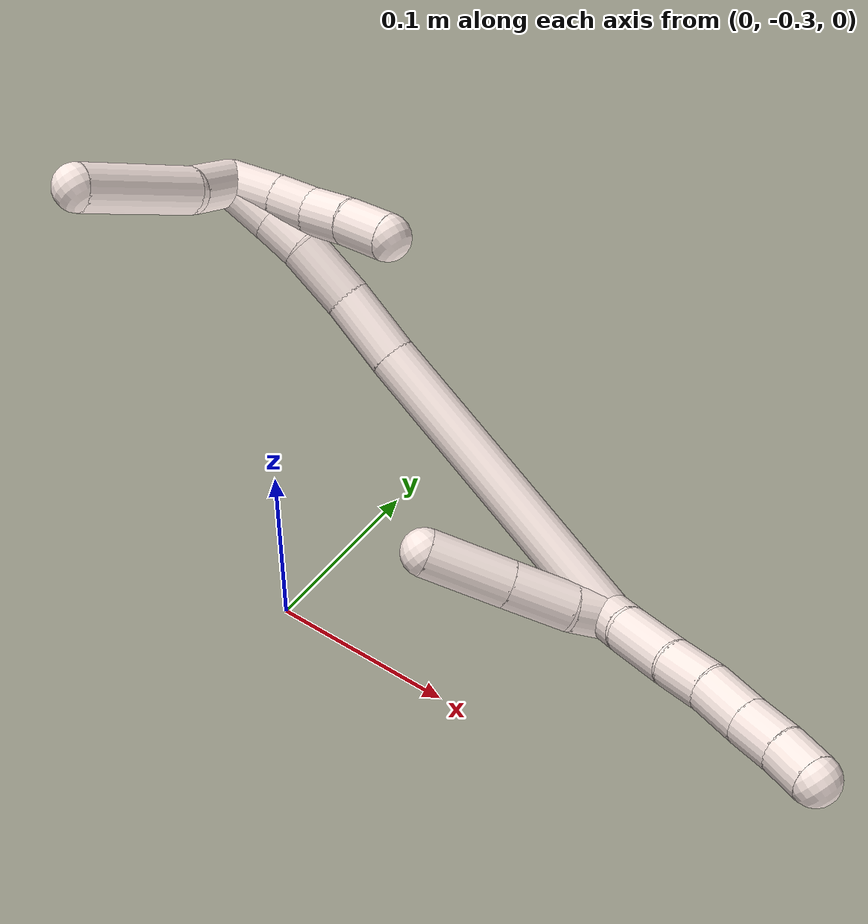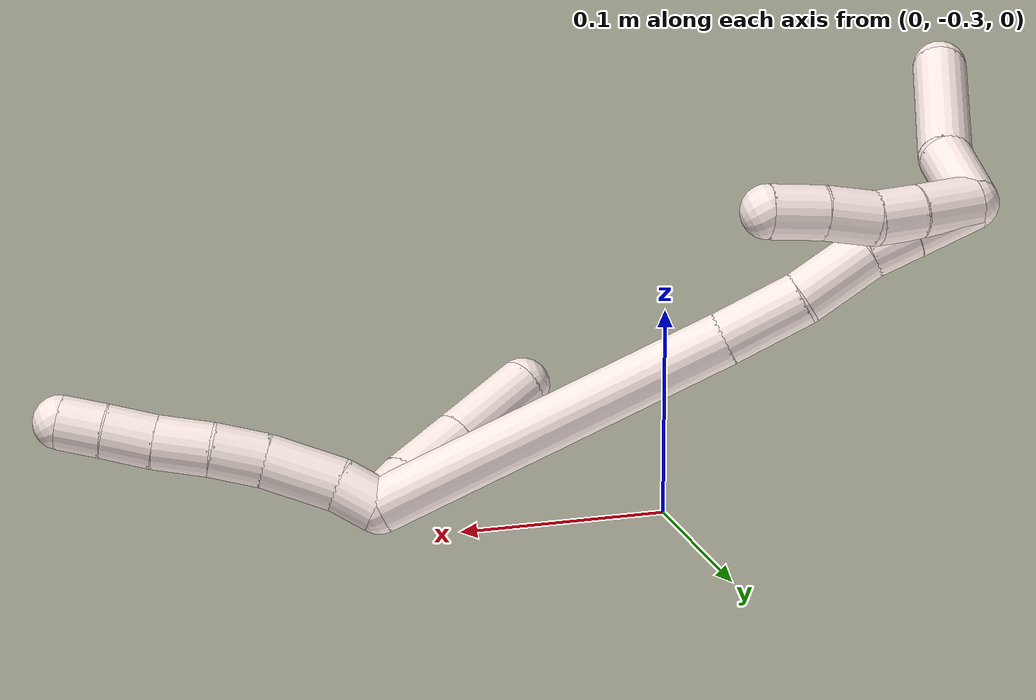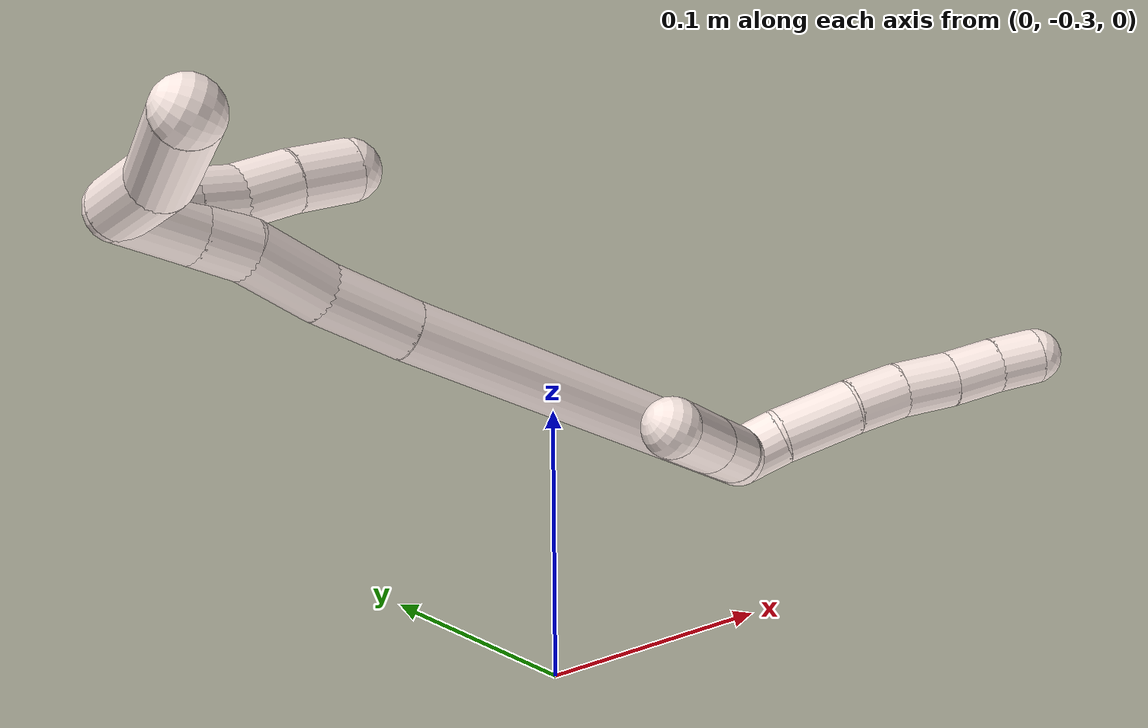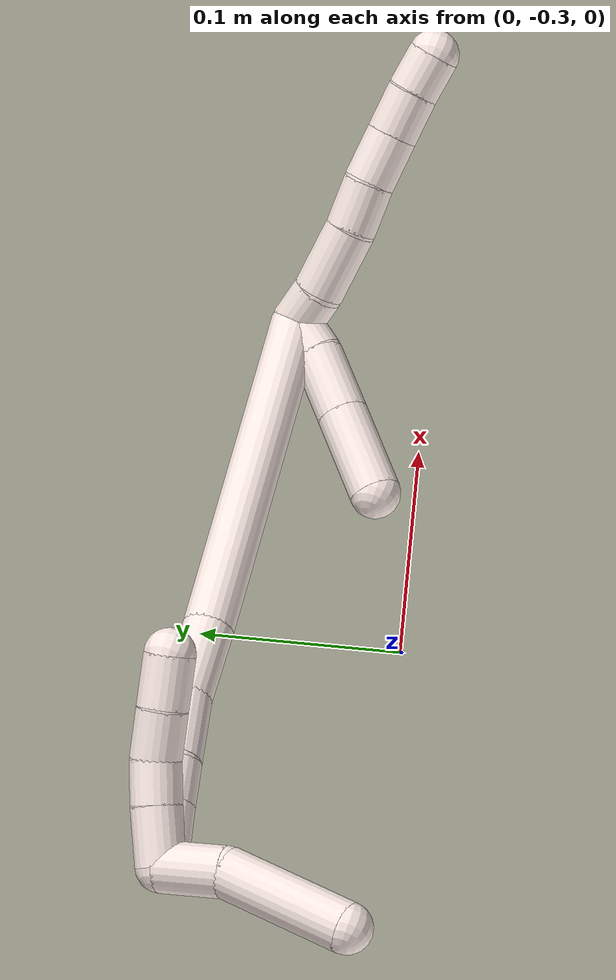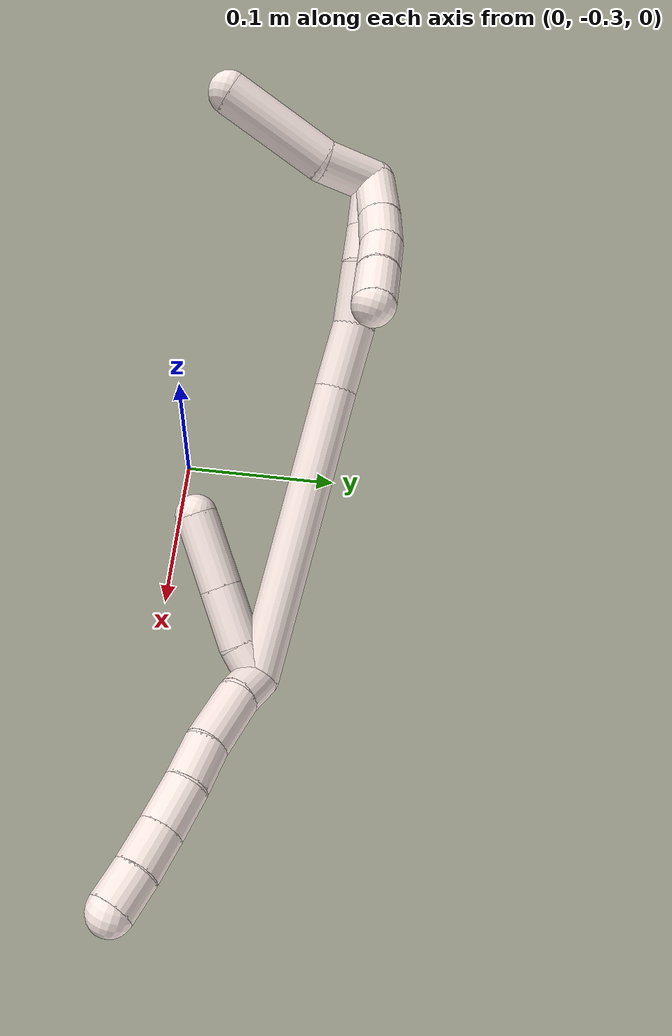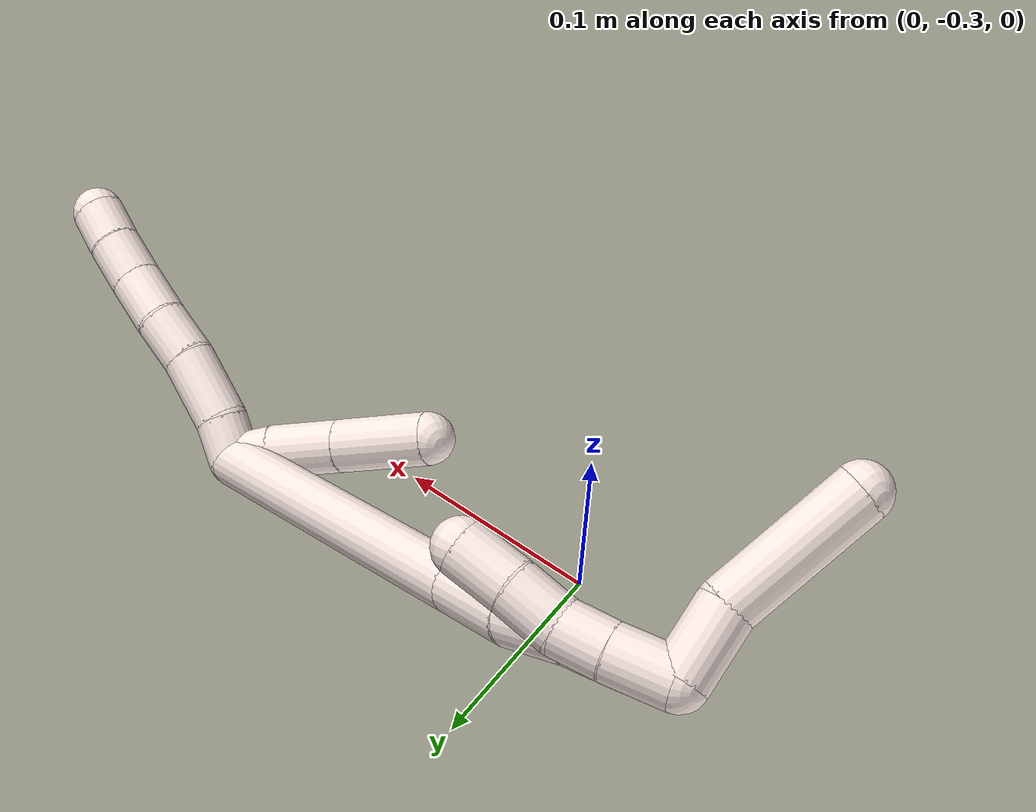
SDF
<sdf version="1.7">
 <world name="default">
  <model name="11">
   <static>0</static>
   <link name="11">
    <collision name="collision-cylinder-e_1_2_8">
     <pose>0.002627 0.008085 0.005651 -0.960799 0.260261 -0.136187</pose>
     <geometry><cylinder><radius>0.0125</radius><length>0.020416</length></cylinder></geometry>
     <surface>
      <friction><ode><mu>1.16</mu><mu2>1.16</mu2><slip1>0</slip1><slip2>0</slip2></ode></friction>
      <contact><ode><kp>1e+06</kp><kd>1</kd><max_vel>0</max_vel><min_depth>0.001</min_depth></ode></contact>
     </surface>
    </collision>
    <visual name="visual-cylinder-e_1_2_8">
     <pose>0.002627 0.008085 0.005651 -0.960799 0.260261 -0.136187</pose>
     <geometry><cylinder><radius>0.0125</radius><length>0.020416</length></cylinder></geometry>
     <material><ambient>1 0.933333 0.909804 1</ambient></material>
    </visual>
    <collision name="collision-cylinder-e_2_8_9">
     <pose>0.010741 0.027759 0.023322 -0.767132 0.317507 -0.129039</pose>
     <geometry><cylinder><radius>0.0125</radius><length>0.03515</length></cylinder></geometry>
     <surface>
      <friction><ode><mu>1.16</mu><mu2>1.16</mu2><slip1>0</slip1><slip2>0</slip2></ode></friction>
      <contact><ode><kp>1e+06</kp><kd>1</kd><max_vel>0</max_vel><min_depth>0.001</min_depth></ode></contact>
     </surface>
    </collision>
    <visual name="visual-cylinder-e_2_8_9">
     <pose>0.010741 0.027759 0.023322 -0.767132 0.317507 -0.129039</pose>
     <geometry><cylinder><radius>0.0125</radius><length>0.03515</length></cylinder></geometry>
     <material><ambient>1 0.933333 0.909804 1</ambient></material>
    </visual>
    <collision name="collision-cylinder-e_3_9_10">
     <pose>0.020681 0.046191 0.044587 -0.637192 0.369383 -0.123083</pose>
     <geometry><cylinder><radius>0.0125</radius><length>0.02467</length></cylinder></geometry>
     <surface>
      <friction><ode><mu>1.16</mu><mu2>1.16</mu2><slip1>0</slip1><slip2>0</slip2></ode></friction>
      <contact><ode><kp>1e+06</kp><kd>1</kd><max_vel>0</max_vel><min_depth>0.001</min_depth></ode></contact>
     </surface>
    </collision>
    <visual name="visual-cylinder-e_3_9_10">
     <pose>0.020681 0.046191 0.044587 -0.637192 0.369383 -0.123083</pose>
     <geometry><cylinder><radius>0.0125</radius><length>0.02467</length></cylinder></geometry>
     <material><ambient>1 0.933333 0.909804 1</ambient></material>
    </visual>
    <collision name="collision-cylinder-e_4_10_11">
     <pose>0.028447 0.059894 0.064222 -0.583531 0.260057 -0.078507</pose>
     <geometry><cylinder><radius>0.0125</radius><length>0.025765</length></cylinder></geometry>
     <surface>
      <friction><ode><mu>1.16</mu><mu2>1.16</mu2><slip1>0</slip1><slip2>0</slip2></ode></friction>
      <contact><ode><kp>1e+06</kp><kd>1</kd><max_vel>0</max_vel><min_depth>0.001</min_depth></ode></contact>
     </surface>
    </collision>
    <visual name="visual-cylinder-e_4_10_11">
     <pose>0.028447 0.059894 0.064222 -0.583531 0.260057 -0.078507</pose>
     <geometry><cylinder><radius>0.0125</radius><length>0.025765</length></cylinder></geometry>
     <material><ambient>1 0.933333 0.909804 1</ambient></material>
    </visual>
    <collision name="collision-cylinder-e_5_11_12">
     <pose>0.035121 0.0736 0.083396 -0.662047 0.293148 -0.101387</pose>
     <geometry><cylinder><radius>0.0125</radius><length>0.023267</length></cylinder></geometry>
     <surface>
      <friction><ode><mu>1.16</mu><mu2>1.16</mu2><slip1>0</slip1><slip2>0</slip2></ode></friction>
      <contact><ode><kp>1e+06</kp><kd>1</kd><max_vel>0</max_vel><min_depth>0.001</min_depth></ode></contact>
     </surface>
    </collision>
    <visual name="visual-cylinder-e_5_11_12">
     <pose>0.035121 0.0736 0.083396 -0.662047 0.293148 -0.101387</pose>
     <geometry><cylinder><radius>0.0125</radius><length>0.023267</length></cylinder></geometry>
     <material><ambient>1 0.933333 0.909804 1</ambient></material>
    </visual>
    <collision name="collision-cylinder-e_6_12_6">
     <pose>0.040754 0.08659 0.100215 -0.652789 0.220933 -0.075056</pose>
     <geometry><cylinder><radius>0.0125</radius><length>0.020732</length></cylinder></geometry>
     <surface>
      <friction><ode><mu>1.16</mu><mu2>1.16</mu2><slip1>0</slip1><slip2>0</slip2></ode></friction>
      <contact><ode><kp>1e+06</kp><kd>1</kd><max_vel>0</max_vel><min_depth>0.001</min_depth></ode></contact>
     </surface>
    </collision>
    <visual name="visual-cylinder-e_6_12_6">
     <pose>0.040754 0.08659 0.100215 -0.652789 0.220933 -0.075056</pose>
     <geometry><cylinder><radius>0.0125</radius><length>0.020732</length></cylinder></geometry>
     <material><ambient>1 0.933333 0.909804 1</ambient></material>
    </visual>
    <collision name="collision-cylinder-e_1_2_13">
     <pose>-0.006262 0.004734 -0.006769 -2.53126 -0.64866 1.63586</pose>
     <geometry><cylinder><radius>0.0125</radius><length>0.020731</length></cylinder></geometry>
     <surface>
      <friction><ode><mu>1.16</mu><mu2>1.16</mu2><slip1>0</slip1><slip2>0</slip2></ode></friction>
      <contact><ode><kp>1e+06</kp><kd>1</kd><max_vel>0</max_vel><min_depth>0.001</min_depth></ode></contact>
     </surface>
    </collision>
    <visual name="visual-cylinder-e_1_2_13">
     <pose>-0.006262 0.004734 -0.006769 -2.53126 -0.64866 1.63586</pose>
     <geometry><cylinder><radius>0.0125</radius><length>0.020731</length></cylinder></geometry>
     <material><ambient>1 0.933333 0.909804 1</ambient></material>
    </visual>
    <collision name="collision-cylinder-e_2_13_14">
     <pose>-0.021598 0.015474 -0.026963 -2.72095 -0.552783 1.85126</pose>
     <geometry><cylinder><radius>0.0125</radius><length>0.034561</length></cylinder></geometry>
     <surface>
      <friction><ode><mu>1.16</mu><mu2>1.16</mu2><slip1>0</slip1><slip2>0</slip2></ode></friction>
      <contact><ode><kp>1e+06</kp><kd>1</kd><max_vel>0</max_vel><min_depth>0.001</min_depth></ode></contact>
     </surface>
    </collision>
    <visual name="visual-cylinder-e_2_13_14">
     <pose>-0.021598 0.015474 -0.026963 -2.72095 -0.552783 1.85126</pose>
     <geometry><cylinder><radius>0.0125</radius><length>0.034561</length></cylinder></geometry>
     <material><ambient>1 0.933333 0.909804 1</ambient></material>
    </visual>
    <collision name="collision-cylinder-e_3_14_5">
     <pose>-0.042256 0.029302 -0.057832 -2.72005 -0.544801 1.8344</pose>
     <geometry><cylinder><radius>0.0125</radius><length>0.044707</length></cylinder></geometry>
     <surface>
      <friction><ode><mu>1.16</mu><mu2>1.16</mu2><slip1>0</slip1><slip2>0</slip2></ode></friction>
      <contact><ode><kp>1e+06</kp><kd>1</kd><max_vel>0</max_vel><min_depth>0.001</min_depth></ode></contact>
     </surface>
    </collision>
    <visual name="visual-cylinder-e_3_14_5">
     <pose>-0.042256 0.029302 -0.057832 -2.72005 -0.544801 1.8344</pose>
     <geometry><cylinder><radius>0.0125</radius><length>0.044707</length></cylinder></geometry>
     <material><ambient>1 0.933333 0.909804 1</ambient></material>
    </visual>
    <collision name="collision-cylinder-e_1_2_15">
     <pose>-0.008603 -0.000799 -0.085727 3.13228 -0.10001 -2.95598</pose>
     <geometry><cylinder><radius>0.0125</radius><length>0.172323</length></cylinder></geometry>
     <surface>
      <friction><ode><mu>1.16</mu><mu2>1.16</mu2><slip1>0</slip1><slip2>0</slip2></ode></friction>
      <contact><ode><kp>1e+06</kp><kd>1</kd><max_vel>0</max_vel><min_depth>0.001</min_depth></ode></contact>
     </surface>
    </collision>
    <visual name="visual-cylinder-e_1_2_15">
     <pose>-0.008603 -0.000799 -0.085727 3.13228 -0.10001 -2.95598</pose>
     <geometry><cylinder><radius>0.0125</radius><length>0.172323</length></cylinder></geometry>
     <material><ambient>1 0.933333 0.909804 1</ambient></material>
    </visual>
    <collision name="collision-cylinder-e_2_15_16">
     <pose>-0.018389 -0.001471 -0.191048 -3.13517 -0.060361 2.92967</pose>
     <geometry><cylinder><radius>0.0125</radius><length>0.039259</length></cylinder></geometry>
     <surface>
      <friction><ode><mu>1.16</mu><mu2>1.16</mu2><slip1>0</slip1><slip2>0</slip2></ode></friction>
      <contact><ode><kp>1e+06</kp><kd>1</kd><max_vel>0</max_vel><min_depth>0.001</min_depth></ode></contact>
     </surface>
    </collision>
    <visual name="visual-cylinder-e_2_15_16">
     <pose>-0.018389 -0.001471 -0.191048 -3.13517 -0.060361 2.92967</pose>
     <geometry><cylinder><radius>0.0125</radius><length>0.039259</length></cylinder></geometry>
     <material><ambient>1 0.933333 0.909804 1</ambient></material>
    </visual>
    <collision name="collision-cylinder-e_3_16_17">
     <pose>-0.021427 0.001463 -0.228193 -2.98291 -0.103902 1.15836</pose>
     <geometry><cylinder><radius>0.0125</radius><length>0.035742</length></cylinder></geometry>
     <surface>
      <friction><ode><mu>1.16</mu><mu2>1.16</mu2><slip1>0</slip1><slip2>0</slip2></ode></friction>
      <contact><ode><kp>1e+06</kp><kd>1</kd><max_vel>0</max_vel><min_depth>0.001</min_depth></ode></contact>
     </surface>
    </collision>
    <visual name="visual-cylinder-e_3_16_17">
     <pose>-0.021427 0.001463 -0.228193 -2.98291 -0.103902 1.15836</pose>
     <geometry><cylinder><radius>0.0125</radius><length>0.035742</length></cylinder></geometry>
     <material><ambient>1 0.933333 0.909804 1</ambient></material>
    </visual>
    <collision name="collision-cylinder-e_4_17_18">
     <pose>-0.025754 0.004525 -0.256499 -3.11808 -0.226035 2.93516</pose>
     <geometry><cylinder><radius>0.0125</radius><length>0.022078</length></cylinder></geometry>
     <surface>
      <friction><ode><mu>1.16</mu><mu2>1.16</mu2><slip1>0</slip1><slip2>0</slip2></ode></friction>
      <contact><ode><kp>1e+06</kp><kd>1</kd><max_vel>0</max_vel><min_depth>0.001</min_depth></ode></contact>
     </surface>
    </collision>
    <visual name="visual-cylinder-e_4_17_18">
     <pose>-0.025754 0.004525 -0.256499 -3.11808 -0.226035 2.93516</pose>
     <geometry><cylinder><radius>0.0125</radius><length>0.022078</length></cylinder></geometry>
     <material><ambient>1 0.933333 0.909804 1</ambient></material>
    </visual>
    <collision name="collision-cylinder-e_5_18_1">
     <pose>-0.031983 0.005309 -0.282076 -3.10576 -0.24793 2.85593</pose>
     <geometry><cylinder><radius>0.0125</radius><length>0.030598</length></cylinder></geometry>
     <surface>
      <friction><ode><mu>1.16</mu><mu2>1.16</mu2><slip1>0</slip1><slip2>0</slip2></ode></friction>
      <contact><ode><kp>1e+06</kp><kd>1</kd><max_vel>0</max_vel><min_depth>0.001</min_depth></ode></contact>
     </surface>
    </collision>
    <visual name="visual-cylinder-e_5_18_1">
     <pose>-0.031983 0.005309 -0.282076 -3.10576 -0.24793 2.85593</pose>
     <geometry><cylinder><radius>0.0125</radius><length>0.030598</length></cylinder></geometry>
     <material><ambient>1 0.933333 0.909804 1</ambient></material>
    </visual>
    <collision name="collision-cylinder-e_1_1_19">
     <pose>-0.04328 0.020885 -0.296336 -1.5335 -0.464462 0.448026</pose>
     <geometry><cylinder><radius>0.0125</radius><length>0.033678</length></cylinder></geometry>
     <surface>
      <friction><ode><mu>1.16</mu><mu2>1.16</mu2><slip1>0</slip1><slip2>0</slip2></ode></friction>
      <contact><ode><kp>1e+06</kp><kd>1</kd><max_vel>0</max_vel><min_depth>0.001</min_depth></ode></contact>
     </surface>
    </collision>
    <visual name="visual-cylinder-e_1_1_19">
     <pose>-0.04328 0.020885 -0.296336 -1.5335 -0.464462 0.448026</pose>
     <geometry><cylinder><radius>0.0125</radius><length>0.033678</length></cylinder></geometry>
     <material><ambient>1 0.933333 0.909804 1</ambient></material>
    </visual>
    <collision name="collision-cylinder-e_2_19_4">
     <pose>-0.06919 0.062288 -0.303994 -1.87309 -0.587005 0.779626</pose>
     <geometry><cylinder><radius>0.0125</radius><length>0.066322</length></cylinder></geometry>
     <surface>
      <friction><ode><mu>1.16</mu><mu2>1.16</mu2><slip1>0</slip1><slip2>0</slip2></ode></friction>
      <contact><ode><kp>1e+06</kp><kd>1</kd><max_vel>0</max_vel><min_depth>0.001</min_depth></ode></contact>
     </surface>
    </collision>
    <visual name="visual-cylinder-e_2_19_4">
     <pose>-0.06919 0.062288 -0.303994 -1.87309 -0.587005 0.779626</pose>
     <geometry><cylinder><radius>0.0125</radius><length>0.066322</length></cylinder></geometry>
     <material><ambient>1 0.933333 0.909804 1</ambient></material>
    </visual>
    <collision name="collision-cylinder-e_1_1_20">
     <pose>-0.027411 0.007181 -0.28542 -0.116239 0.624368 -0.037552</pose>
     <geometry><cylinder><radius>0.0125</radius><length>0.028485</length></cylinder></geometry>
     <surface>
      <friction><ode><mu>1.16</mu><mu2>1.16</mu2><slip1>0</slip1><slip2>0</slip2></ode></friction>
      <contact><ode><kp>1e+06</kp><kd>1</kd><max_vel>0</max_vel><min_depth>0.001</min_depth></ode></contact>
     </surface>
    </collision>
    <visual name="visual-cylinder-e_1_1_20">
     <pose>-0.027411 0.007181 -0.28542 -0.116239 0.624368 -0.037552</pose>
     <geometry><cylinder><radius>0.0125</radius><length>0.028485</length></cylinder></geometry>
     <material><ambient>1 0.933333 0.909804 1</ambient></material>
    </visual>
    <collision name="collision-cylinder-e_2_20_21">
     <pose>-0.01325 0.010018 -0.265042 -0.166621 0.573897 -0.049273</pose>
     <geometry><cylinder><radius>0.0125</radius><length>0.021495</length></cylinder></geometry>
     <surface>
      <friction><ode><mu>1.16</mu><mu2>1.16</mu2><slip1>0</slip1><slip2>0</slip2></ode></friction>
      <contact><ode><kp>1e+06</kp><kd>1</kd><max_vel>0</max_vel><min_depth>0.001</min_depth></ode></contact>
     </surface>
    </collision>
    <visual name="visual-cylinder-e_2_20_21">
     <pose>-0.01325 0.010018 -0.265042 -0.166621 0.573897 -0.049273</pose>
     <geometry><cylinder><radius>0.0125</radius><length>0.021495</length></cylinder></geometry>
     <material><ambient>1 0.933333 0.909804 1</ambient></material>
    </visual>
    <collision name="collision-cylinder-e_3_21_22">
     <pose>-0.00096 0.016189 -0.246993 -0.472413 0.561032 -0.138476</pose>
     <geometry><cylinder><radius>0.0125</radius><length>0.024267</length></cylinder></geometry>
     <surface>
      <friction><ode><mu>1.16</mu><mu2>1.16</mu2><slip1>0</slip1><slip2>0</slip2></ode></friction>
      <contact><ode><kp>1e+06</kp><kd>1</kd><max_vel>0</max_vel><min_depth>0.001</min_depth></ode></contact>
     </surface>
    </collision>
    <visual name="visual-cylinder-e_3_21_22">
     <pose>-0.00096 0.016189 -0.246993 -0.472413 0.561032 -0.138476</pose>
     <geometry><cylinder><radius>0.0125</radius><length>0.024267</length></cylinder></geometry>
     <material><ambient>1 0.933333 0.909804 1</ambient></material>
    </visual>
    <collision name="collision-cylinder-e_4_22_3">
     <pose>0.01183 0.025057 -0.227447 -0.383303 0.514219 -0.101945</pose>
     <geometry><cylinder><radius>0.0125</radius><length>0.025753</length></cylinder></geometry>
     <surface>
      <friction><ode><mu>1.16</mu><mu2>1.16</mu2><slip1>0</slip1><slip2>0</slip2></ode></friction>
      <contact><ode><kp>1e+06</kp><kd>1</kd><max_vel>0</max_vel><min_depth>0.001</min_depth></ode></contact>
     </surface>
    </collision>
    <visual name="visual-cylinder-e_4_22_3">
     <pose>0.01183 0.025057 -0.227447 -0.383303 0.514219 -0.101945</pose>
     <geometry><cylinder><radius>0.0125</radius><length>0.025753</length></cylinder></geometry>
     <material><ambient>1 0.933333 0.909804 1</ambient></material>
    </visual>
    <collision name="collision-sphere-3">
     <pose>0.018163 0.02925 -0.217049 0 -0 0</pose>
     <geometry><sphere><radius>0.0125</radius></sphere></geometry>
     <surface>
      <friction><ode><mu>1.16</mu><mu2>1.16</mu2><slip1>0</slip1><slip2>0</slip2></ode></friction>
      <contact><ode><kp>1e+06</kp><kd>1</kd><max_vel>0</max_vel><min_depth>0.001</min_depth></ode></contact>
     </surface>
    </collision>
    <visual name="visual-sphere-3">
     <pose>0.018163 0.02925 -0.217049 0 -0 0</pose>
     <geometry><sphere><radius>0.0125</radius></sphere></geometry>
     <material><ambient>1 0.933333 0.909804 1</ambient></material>
    </visual>
    <collision name="collision-sphere-22">
     <pose>0.005496 0.020864 -0.237845 0 -0 0</pose>
     <geometry><sphere><radius>0.0125</radius></sphere></geometry>
     <surface>
      <friction><ode><mu>1.16</mu><mu2>1.16</mu2><slip1>0</slip1><slip2>0</slip2></ode></friction>
      <contact><ode><kp>1e+06</kp><kd>1</kd><max_vel>0</max_vel><min_depth>0.001</min_depth></ode></contact>
     </surface>
    </collision>
    <visual name="visual-sphere-22">
     <pose>0.005496 0.020864 -0.237845 0 -0 0</pose>
     <geometry><sphere><radius>0.0125</radius></sphere></geometry>
     <material><ambient>1 0.933333 0.909804 1</ambient></material>
    </visual>
    <collision name="collision-sphere-21">
     <pose>-0.007415 0.011514 -0.256142 0 -0 0</pose>
     <geometry><sphere><radius>0.0125</radius></sphere></geometry>
     <surface>
      <friction><ode><mu>1.16</mu><mu2>1.16</mu2><slip1>0</slip1><slip2>0</slip2></ode></friction>
      <contact><ode><kp>1e+06</kp><kd>1</kd><max_vel>0</max_vel><min_depth>0.001</min_depth></ode></contact>
     </surface>
    </collision>
    <visual name="visual-sphere-21">
     <pose>-0.007415 0.011514 -0.256142 0 -0 0</pose>
     <geometry><sphere><radius>0.0125</radius></sphere></geometry>
     <material><ambient>1 0.933333 0.909804 1</ambient></material>
    </visual>
    <collision name="collision-sphere-20">
     <pose>-0.019085 0.008521 -0.273943 0 -0 0</pose>
     <geometry><sphere><radius>0.0125</radius></sphere></geometry>
     <surface>
      <friction><ode><mu>1.16</mu><mu2>1.16</mu2><slip1>0</slip1><slip2>0</slip2></ode></friction>
      <contact><ode><kp>1e+06</kp><kd>1</kd><max_vel>0</max_vel><min_depth>0.001</min_depth></ode></contact>
     </surface>
    </collision>
    <visual name="visual-sphere-20">
     <pose>-0.019085 0.008521 -0.273943 0 -0 0</pose>
     <geometry><sphere><radius>0.0125</radius></sphere></geometry>
     <material><ambient>1 0.933333 0.909804 1</ambient></material>
    </visual>
    <collision name="collision-sphere-4">
     <pose>-0.087557 0.088646 -0.312214 0 -0 0</pose>
     <geometry><sphere><radius>0.0125</radius></sphere></geometry>
     <surface>
      <friction><ode><mu>1.16</mu><mu2>1.16</mu2><slip1>0</slip1><slip2>0</slip2></ode></friction>
      <contact><ode><kp>1e+06</kp><kd>1</kd><max_vel>0</max_vel><min_depth>0.001</min_depth></ode></contact>
     </surface>
    </collision>
    <visual name="visual-sphere-4">
     <pose>-0.087557 0.088646 -0.312214 0 -0 0</pose>
     <geometry><sphere><radius>0.0125</radius></sphere></geometry>
     <material><ambient>1 0.933333 0.909804 1</ambient></material>
    </visual>
    <collision name="collision-sphere-12">
     <pose>0.038483 0.080446 0.09218 0 -0 0</pose>
     <geometry><sphere><radius>0.0125</radius></sphere></geometry>
     <surface>
      <friction><ode><mu>1.16</mu><mu2>1.16</mu2><slip1>0</slip1><slip2>0</slip2></ode></friction>
      <contact><ode><kp>1e+06</kp><kd>1</kd><max_vel>0</max_vel><min_depth>0.001</min_depth></ode></contact>
     </surface>
    </collision>
    <visual name="visual-sphere-12">
     <pose>0.038483 0.080446 0.09218 0 -0 0</pose>
     <geometry><sphere><radius>0.0125</radius></sphere></geometry>
     <material><ambient>1 0.933333 0.909804 1</ambient></material>
    </visual>
    <collision name="collision-sphere-11">
     <pose>0.031759 0.066753 0.074612 0 -0 0</pose>
     <geometry><sphere><radius>0.0125</radius></sphere></geometry>
     <surface>
      <friction><ode><mu>1.16</mu><mu2>1.16</mu2><slip1>0</slip1><slip2>0</slip2></ode></friction>
      <contact><ode><kp>1e+06</kp><kd>1</kd><max_vel>0</max_vel><min_depth>0.001</min_depth></ode></contact>
     </surface>
    </collision>
    <visual name="visual-sphere-11">
     <pose>0.031759 0.066753 0.074612 0 -0 0</pose>
     <geometry><sphere><radius>0.0125</radius></sphere></geometry>
     <material><ambient>1 0.933333 0.909804 1</ambient></material>
    </visual>
    <collision name="collision-sphere-10">
     <pose>0.025134 0.053035 0.053833 0 -0 0</pose>
     <geometry><sphere><radius>0.0125</radius></sphere></geometry>
     <surface>
      <friction><ode><mu>1.16</mu><mu2>1.16</mu2><slip1>0</slip1><slip2>0</slip2></ode></friction>
      <contact><ode><kp>1e+06</kp><kd>1</kd><max_vel>0</max_vel><min_depth>0.001</min_depth></ode></contact>
     </surface>
    </collision>
    <visual name="visual-sphere-10">
     <pose>0.025134 0.053035 0.053833 0 -0 0</pose>
     <geometry><sphere><radius>0.0125</radius></sphere></geometry>
     <material><ambient>1 0.933333 0.909804 1</ambient></material>
    </visual>
    <collision name="collision-sphere-9">
     <pose>0.016227 0.039347 0.035341 0 -0 0</pose>
     <geometry><sphere><radius>0.0125</radius></sphere></geometry>
     <surface>
      <friction><ode><mu>1.16</mu><mu2>1.16</mu2><slip1>0</slip1><slip2>0</slip2></ode></friction>
      <contact><ode><kp>1e+06</kp><kd>1</kd><max_vel>0</max_vel><min_depth>0.001</min_depth></ode></contact>
     </surface>
    </collision>
    <visual name="visual-sphere-9">
     <pose>0.016227 0.039347 0.035341 0 -0 0</pose>
     <geometry><sphere><radius>0.0125</radius></sphere></geometry>
     <material><ambient>1 0.933333 0.909804 1</ambient></material>
    </visual>
    <collision name="collision-sphere-2">
     <geometry><sphere><radius>0.0125</radius></sphere></geometry>
     <surface>
      <friction><ode><mu>1.16</mu><mu2>1.16</mu2><slip1>0</slip1><slip2>0</slip2></ode></friction>
      <contact><ode><kp>1e+06</kp><kd>1</kd><max_vel>0</max_vel><min_depth>0.001</min_depth></ode></contact>
     </surface>
    </collision>
    <visual name="visual-sphere-2">
     <geometry><sphere><radius>0.0125</radius></sphere></geometry>
     <material><ambient>1 0.933333 0.909804 1</ambient></material>
    </visual>
    <collision name="collision-sphere-19">
     <pose>-0.050823 0.03593 -0.295775 0 -0 0</pose>
     <geometry><sphere><radius>0.0125</radius></sphere></geometry>
     <surface>
      <friction><ode><mu>1.16</mu><mu2>1.16</mu2><slip1>0</slip1><slip2>0</slip2></ode></friction>
      <contact><ode><kp>1e+06</kp><kd>1</kd><max_vel>0</max_vel><min_depth>0.001</min_depth></ode></contact>
     </surface>
    </collision>
    <visual name="visual-sphere-19">
     <pose>-0.050823 0.03593 -0.295775 0 -0 0</pose>
     <geometry><sphere><radius>0.0125</radius></sphere></geometry>
     <material><ambient>1 0.933333 0.909804 1</ambient></material>
    </visual>
    <collision name="collision-sphere-8">
     <pose>0.005254 0.016171 0.011302 0 -0 0</pose>
     <geometry><sphere><radius>0.0125</radius></sphere></geometry>
     <surface>
      <friction><ode><mu>1.16</mu><mu2>1.16</mu2><slip1>0</slip1><slip2>0</slip2></ode></friction>
      <contact><ode><kp>1e+06</kp><kd>1</kd><max_vel>0</max_vel><min_depth>0.001</min_depth></ode></contact>
     </surface>
    </collision>
    <visual name="visual-sphere-8">
     <pose>0.005254 0.016171 0.011302 0 -0 0</pose>
     <geometry><sphere><radius>0.0125</radius></sphere></geometry>
     <material><ambient>1 0.933333 0.909804 1</ambient></material>
    </visual>
    <collision name="collision-sphere-6">
     <pose>0.043026 0.092733 0.108249 0 -0 0</pose>
     <geometry><sphere><radius>0.0125</radius></sphere></geometry>
     <surface>
      <friction><ode><mu>1.16</mu><mu2>1.16</mu2><slip1>0</slip1><slip2>0</slip2></ode></friction>
      <contact><ode><kp>1e+06</kp><kd>1</kd><max_vel>0</max_vel><min_depth>0.001</min_depth></ode></contact>
     </surface>
    </collision>
    <visual name="visual-sphere-6">
     <pose>0.043026 0.092733 0.108249 0 -0 0</pose>
     <geometry><sphere><radius>0.0125</radius></sphere></geometry>
     <material><ambient>1 0.933333 0.909804 1</ambient></material>
    </visual>
    <collision name="collision-sphere-13">
     <pose>-0.012524 0.009469 -0.013538 0 -0 0</pose>
     <geometry><sphere><radius>0.0125</radius></sphere></geometry>
     <surface>
      <friction><ode><mu>1.16</mu><mu2>1.16</mu2><slip1>0</slip1><slip2>0</slip2></ode></friction>
      <contact><ode><kp>1e+06</kp><kd>1</kd><max_vel>0</max_vel><min_depth>0.001</min_depth></ode></contact>
     </surface>
    </collision>
    <visual name="visual-sphere-13">
     <pose>-0.012524 0.009469 -0.013538 0 -0 0</pose>
     <geometry><sphere><radius>0.0125</radius></sphere></geometry>
     <material><ambient>1 0.933333 0.909804 1</ambient></material>
    </visual>
    <collision name="collision-sphere-14">
     <pose>-0.030671 0.02148 -0.040388 0 -0 0</pose>
     <geometry><sphere><radius>0.0125</radius></sphere></geometry>
     <surface>
      <friction><ode><mu>1.16</mu><mu2>1.16</mu2><slip1>0</slip1><slip2>0</slip2></ode></friction>
      <contact><ode><kp>1e+06</kp><kd>1</kd><max_vel>0</max_vel><min_depth>0.001</min_depth></ode></contact>
     </surface>
    </collision>
    <visual name="visual-sphere-14">
     <pose>-0.030671 0.02148 -0.040388 0 -0 0</pose>
     <geometry><sphere><radius>0.0125</radius></sphere></geometry>
     <material><ambient>1 0.933333 0.909804 1</ambient></material>
    </visual>
    <collision name="collision-sphere-5">
     <pose>-0.05384 0.037124 -0.075276 0 -0 0</pose>
     <geometry><sphere><radius>0.0125</radius></sphere></geometry>
     <surface>
      <friction><ode><mu>1.16</mu><mu2>1.16</mu2><slip1>0</slip1><slip2>0</slip2></ode></friction>
      <contact><ode><kp>1e+06</kp><kd>1</kd><max_vel>0</max_vel><min_depth>0.001</min_depth></ode></contact>
     </surface>
    </collision>
    <visual name="visual-sphere-5">
     <pose>-0.05384 0.037124 -0.075276 0 -0 0</pose>
     <geometry><sphere><radius>0.0125</radius></sphere></geometry>
     <material><ambient>1 0.933333 0.909804 1</ambient></material>
    </visual>
    <collision name="collision-sphere-15">
     <pose>-0.017205 -0.001597 -0.171455 0 -0 0</pose>
     <geometry><sphere><radius>0.0125</radius></sphere></geometry>
     <surface>
      <friction><ode><mu>1.16</mu><mu2>1.16</mu2><slip1>0</slip1><slip2>0</slip2></ode></friction>
      <contact><ode><kp>1e+06</kp><kd>1</kd><max_vel>0</max_vel><min_depth>0.001</min_depth></ode></contact>
     </surface>
    </collision>
    <visual name="visual-sphere-15">
     <pose>-0.017205 -0.001597 -0.171455 0 -0 0</pose>
     <geometry><sphere><radius>0.0125</radius></sphere></geometry>
     <material><ambient>1 0.933333 0.909804 1</ambient></material>
    </visual>
    <collision name="collision-sphere-16">
     <pose>-0.019573 -0.001346 -0.210641 0 -0 0</pose>
     <geometry><sphere><radius>0.0125</radius></sphere></geometry>
     <surface>
      <friction><ode><mu>1.16</mu><mu2>1.16</mu2><slip1>0</slip1><slip2>0</slip2></ode></friction>
      <contact><ode><kp>1e+06</kp><kd>1</kd><max_vel>0</max_vel><min_depth>0.001</min_depth></ode></contact>
     </surface>
    </collision>
    <visual name="visual-sphere-16">
     <pose>-0.019573 -0.001346 -0.210641 0 -0 0</pose>
     <geometry><sphere><radius>0.0125</radius></sphere></geometry>
     <material><ambient>1 0.933333 0.909804 1</ambient></material>
    </visual>
    <collision name="collision-sphere-17">
     <pose>-0.023281 0.004272 -0.245744 0 -0 0</pose>
     <geometry><sphere><radius>0.0125</radius></sphere></geometry>
     <surface>
      <friction><ode><mu>1.16</mu><mu2>1.16</mu2><slip1>0</slip1><slip2>0</slip2></ode></friction>
      <contact><ode><kp>1e+06</kp><kd>1</kd><max_vel>0</max_vel><min_depth>0.001</min_depth></ode></contact>
     </surface>
    </collision>
    <visual name="visual-sphere-17">
     <pose>-0.023281 0.004272 -0.245744 0 -0 0</pose>
     <geometry><sphere><radius>0.0125</radius></sphere></geometry>
     <material><ambient>1 0.933333 0.909804 1</ambient></material>
    </visual>
    <collision name="collision-sphere-18">
     <pose>-0.028228 0.004778 -0.267254 0 -0 0</pose>
     <geometry><sphere><radius>0.0125</radius></sphere></geometry>
     <surface>
      <friction><ode><mu>1.16</mu><mu2>1.16</mu2><slip1>0</slip1><slip2>0</slip2></ode></friction>
      <contact><ode><kp>1e+06</kp><kd>1</kd><max_vel>0</max_vel><min_depth>0.001</min_depth></ode></contact>
     </surface>
    </collision>
    <visual name="visual-sphere-18">
     <pose>-0.028228 0.004778 -0.267254 0 -0 0</pose>
     <geometry><sphere><radius>0.0125</radius></sphere></geometry>
     <material><ambient>1 0.933333 0.909804 1</ambient></material>
    </visual>
    <collision name="collision-sphere-1">
     <pose>-0.035737 0.00584 -0.296898 0 -0 0</pose>
     <geometry><sphere><radius>0.0125</radius></sphere></geometry>
     <surface>
      <friction><ode><mu>1.16</mu><mu2>1.16</mu2><slip1>0</slip1><slip2>0</slip2></ode></friction>
      <contact><ode><kp>1e+06</kp><kd>1</kd><max_vel>0</max_vel><min_depth>0.001</min_depth></ode></contact>
     </surface>
    </collision>
    <visual name="visual-sphere-1">
     <pose>-0.035737 0.00584 -0.296898 0 -0 0</pose>
     <geometry><sphere><radius>0.0125</radius></sphere></geometry>
     <material><ambient>1 0.933333 0.909804 1</ambient></material>
    </visual>
    <inertial>
     <pose>-0.014369 0.020914 -0.128657 0 -0 0</pose>
     <mass>0.75</mass>
     <inertia><ixx>-0.000442</ixx><ixy>0</ixy><ixz>0</ixz><iyy>0.000443</iyy><iyz>0</iyz><izz>7e-06</izz></inertia>
    </inertial>
   </link>
   <pose>0.156379 -0.233467 0.040159 2.1684 -0.52088 0.978834</pose>
  </model>
 </world>
</sdf>
